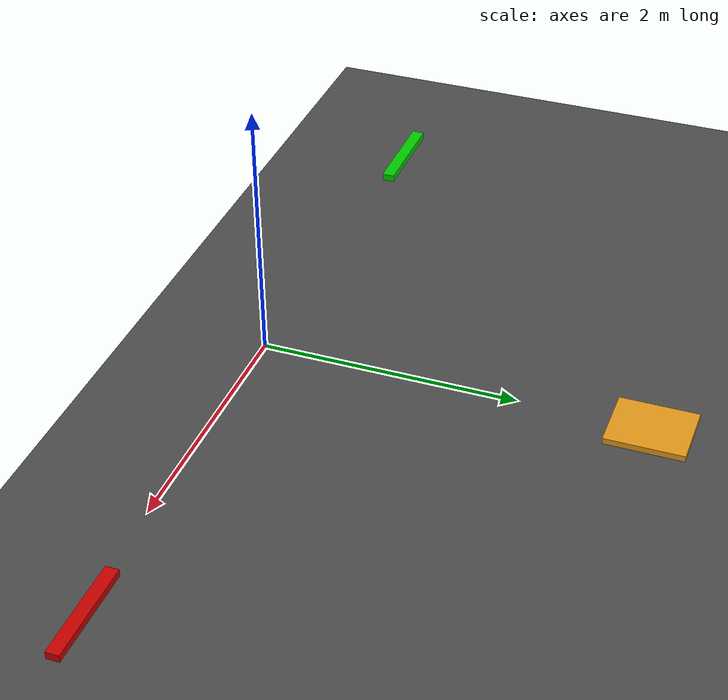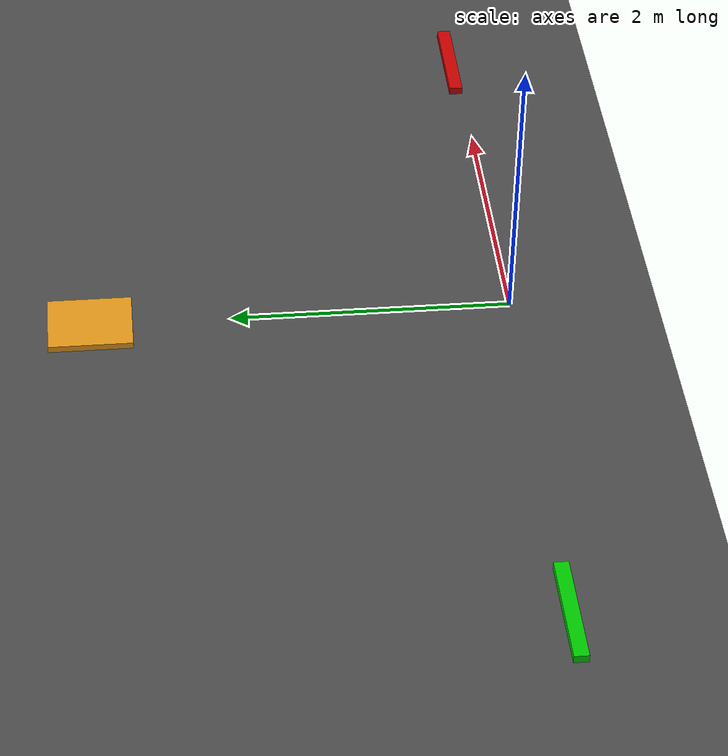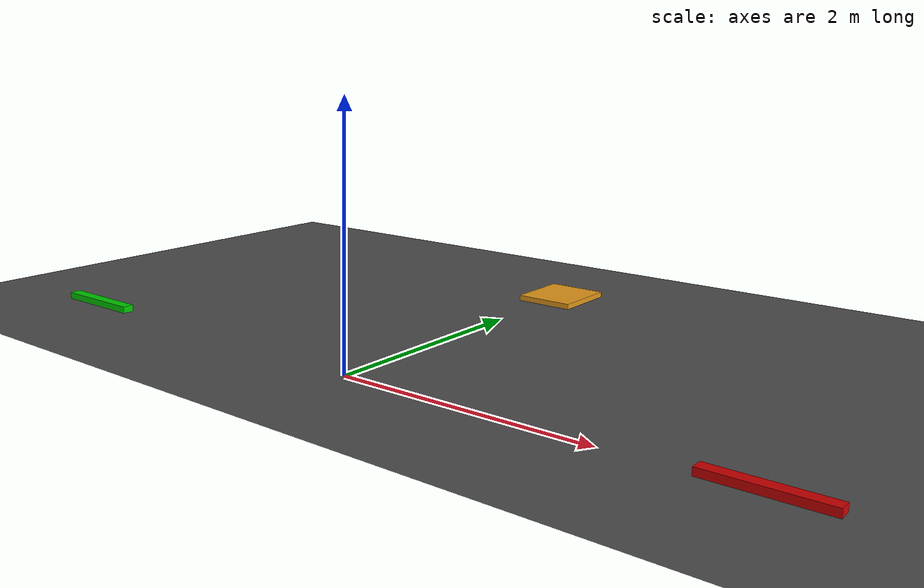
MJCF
<?xml version="1.0" encoding="UTF-8"?>
<mujoco model="2d_lander">

    <!-- global settings -->
    <option timestep="0.01" integrator="RK4" gravity="0 -1.62 0"/>
    <size   njmax="400" nconmax="100"/>
    <visual><map/></visual>

    <!-- ─────── world ─────── -->
    <worldbody>

        <!-- ground -->
        <geom name="ground" type="plane" pos="0 0 0"
              size="30 30 0.1" rgba=".3 .3 .3 1"/>

        <!-- landing pads -->
        <geom type="box" pos="-3 0.05 0" size=".4 .05 .05" rgba="0 .8 0 1"/>
        <geom type="box" pos=" 3 0.05 0" size=".4 .05 .05" rgba=".8 0 0 1"/>

        <!-- the lander -->
        <body name="lander" pos="0 3 0">
            <freejoint name="root"/>
            <geom type="box" size=".25 .30 .04" density="500" rgba=".9 .6 .1 1"/>
        </body>

        <!-- camera that follows the lander -->
        <camera name="track" mode="track" target="lander"
                pos="0 0 8" xyaxes="1 0 0 0 1 0"/>

    </worldbody>

    <!-- ─────── actuators ─────── -->
    <!-- ctrl[0] : ± torque about Z  (human) -->
    <!-- ctrl[1] :   upward force +Y (robot) -->
    <actuator>
        <general name="torque_z" joint="root"
                 gear="0 0 1 0 0 0"
                 ctrllimited="true" ctrlrange="-20 20"/>

        <general name="thrust_y" joint="root"
                 gear="0 0 0 0 1 0"
                 ctrllimited="true" ctrlrange="0 60"/>
    </actuator>

</mujoco>
